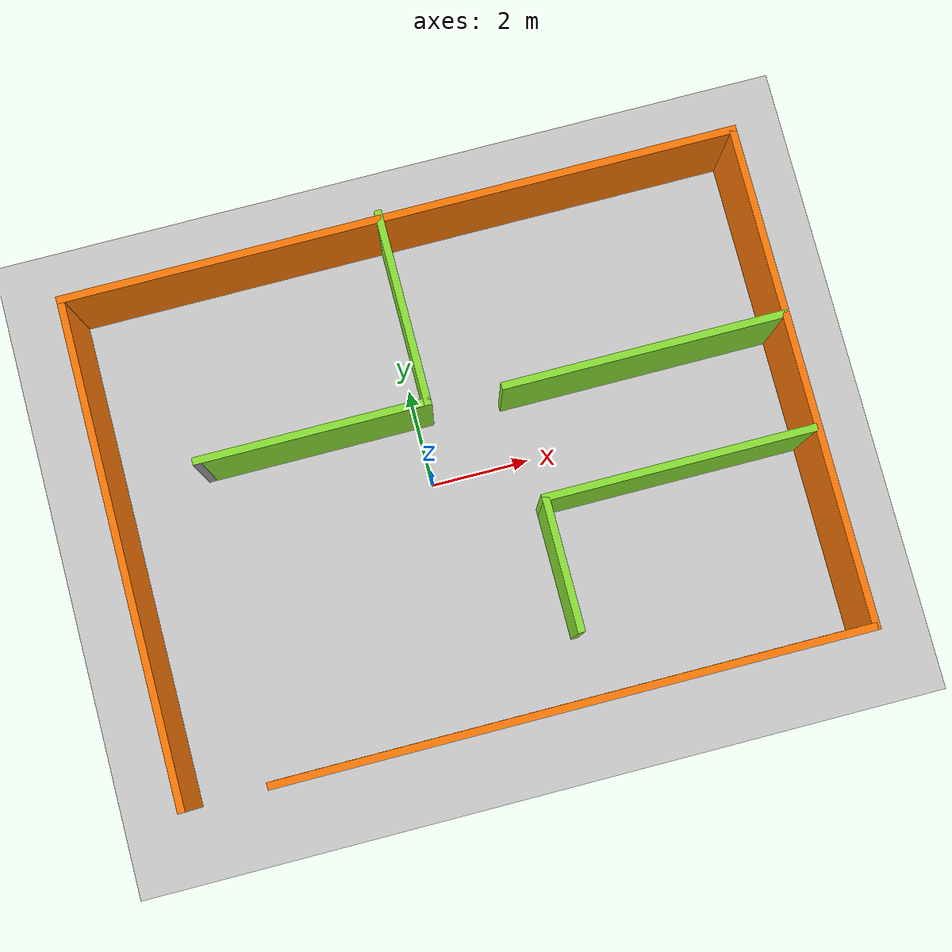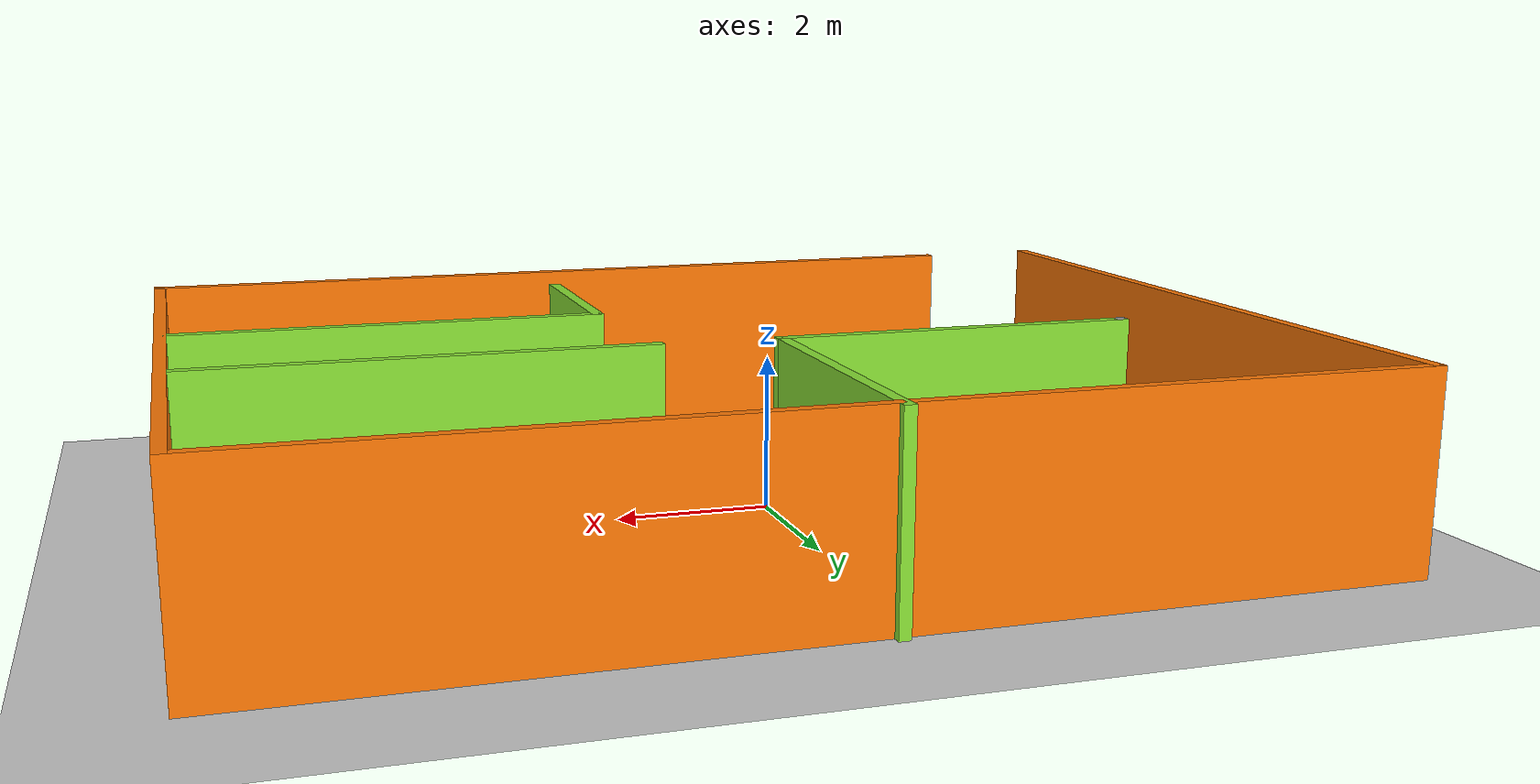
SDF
<sdf version="1.6">
 <world name="default">
  <light name="sun" type="directional">
   <pose>0 0 10 0 -0 0</pose>
   <diffuse>0.8 0.8 0.8 1</diffuse>
   <specular>0.2 0.2 0.2 1</specular>
   <attenuation>
    <range>1000</range>
    <constant>0.9</constant>
    <linear>0.01</linear>
    <quadratic>0.001</quadratic>
   </attenuation>
   <direction>-0.5 0.1 -0.9</direction>
  </light>
  <model name="ground_plane">
   <static>1</static>
   <link name="link">
    <collision name="collision">
     <geometry><plane><normal>0 0 1</normal><size>100 100</size></plane></geometry>
     <surface>
      <contact><collide_bitmask>65535</collide_bitmask></contact>
      <friction><ode><mu>100</mu><mu2>50</mu2></ode></friction>
     </surface>
    </collision>
    <visual name="visual">
     <cast_shadows>0</cast_shadows>
     <geometry><plane><normal>0 0 1</normal><size>100 100</size></plane></geometry>
     <material>
      <script><uri>file://media/materials/scripts/gazebo.material</uri><name>Gazebo/Grey</name></script>
     </material>
    </visual>
   </link>
  </model>
  <gravity>0 0 -9.8</gravity>
  <magnetic_field>6e-06 2.3e-05 -4.2e-05</magnetic_field>
  <atmosphere type="adiabatic"/>
  <physics name="default_physics" default="0" type="ode">
   <max_step_size>0.001</max_step_size>
   <real_time_factor>1</real_time_factor>
   <real_time_update_rate>1000</real_time_update_rate>
  </physics>
  <scene><ambient>0.4 0.4 0.4 1</ambient><background>0.7 0.7 0.7 1</background><shadows>1</shadows></scene>
  <audio><device>default</device></audio>
  <spherical_coordinates>
   <surface_model>EARTH_WGS84</surface_model>
   <latitude_deg>0</latitude_deg>
   <longitude_deg>0</longitude_deg>
   <elevation>0</elevation>
   <heading_deg>0</heading_deg>
  </spherical_coordinates>
  <model name="mod1">
   <pose>0.635126 0.035285 0 0 -0 0</pose>
   <link name="Wall_0">
    <collision name="Wall_0_Collision">
     <geometry><box><size>10.25 0.15 2.5</size></box></geometry>
     <pose>0 0 1.25 0 -0 0</pose>
    </collision>
    <visual name="Wall_0_Visual">
     <pose>0 0 1.25 0 -0 0</pose>
     <geometry><box><size>10.25 0.15 2.5</size></box></geometry>
     <material>
      <script><uri>file://media/materials/scripts/gazebo.material</uri><name>Gazebo/Grey</name></script>
      <ambient>0.996078 0.47451 0.0196078 1</ambient>
     </material>
     <meta><layer>0</layer></meta>
    </visual>
    <pose>-6.8 -0.050462 0 0 -0 1.5708</pose>
   </link>
   <link name="Wall_1">
    <collision name="Wall_1_Collision">
     <geometry><box><size>13.75 0.15 2.5</size></box></geometry>
     <pose>0 0 1.25 0 -0 0</pose>
    </collision>
    <visual name="Wall_1_Visual">
     <pose>0 0 1.25 0 -0 0</pose>
     <geometry><box><size>13.75 0.15 2.5</size></box></geometry>
     <material>
      <script><uri>file://media/materials/scripts/gazebo.material</uri><name>Gazebo/Grey</name></script>
      <ambient>0.996078 0.47451 0.0196078 1</ambient>
     </material>
     <meta><layer>0</layer></meta>
    </visual>
    <pose>0 4.99954 0 0 -0 0</pose>
   </link>
   <link name="Wall_10">
    <collision name="Wall_10_Collision">
     <geometry><box><size>5.75 0.15 2.5</size></box></geometry>
     <pose>0 0 1.25 0 -0 0</pose>
    </collision>
    <visual name="Wall_10_Visual">
     <pose>0 0 1.25 0 -0 0</pose>
     <geometry><box><size>5.75 0.15 2.5</size></box></geometry>
     <material>
      <script><uri>file://media/materials/scripts/gazebo.material</uri><name>Gazebo/Grey</name></script>
      <ambient>0.541176 0.886275 0.203922 1</ambient>
     </material>
     <meta><layer>0</layer></meta>
    </visual>
    <pose>3.95816 1.17627 0 0 -0 0</pose>
   </link>
   <link name="Wall_13">
    <collision name="Wall_13_Collision">
     <geometry><box><size>5.5 0.15 2.5</size></box></geometry>
     <pose>0 0 1.25 0 -0 0</pose>
    </collision>
    <visual name="Wall_13_Visual">
     <pose>0 0 1.25 0 -0 0</pose>
     <geometry><box><size>5.5 0.15 2.5</size></box></geometry>
     <material>
      <script><uri>file://media/materials/scripts/gazebo.material</uri><name>Gazebo/Grey</name></script>
      <ambient>0.541176 0.886275 0.203922 1</ambient>
     </material>
     <meta><layer>0</layer></meta>
    </visual>
    <pose>4.02558 -1.1297 0 0 -0 3.14159</pose>
   </link>
   <link name="Wall_14">
    <collision name="Wall_14_Collision">
     <geometry><box><size>2.75 0.15 2.5</size></box></geometry>
     <pose>0 0 1.25 0 -0 0</pose>
    </collision>
    <visual name="Wall_14_Visual">
     <pose>0 0 1.25 0 -0 0</pose>
     <geometry><box><size>2.75 0.15 2.5</size></box></geometry>
     <material>
      <script><uri>file://media/materials/scripts/gazebo.material</uri><name>Gazebo/Grey</name></script>
      <ambient>0.541176 0.886275 0.203922 1</ambient>
     </material>
     <meta><layer>0</layer></meta>
    </visual>
    <pose>1.35058 -2.4297 0 0 -0 -1.5708</pose>
   </link>
   <link name="Wall_2">
    <collision name="Wall_2_Collision">
     <geometry><box><size>10.25 0.15 2.5</size></box></geometry>
     <pose>0 0 1.25 0 -0 0</pose>
    </collision>
    <visual name="Wall_2_Visual">
     <pose>0 0 1.25 0 -0 0</pose>
     <geometry><box><size>10.25 0.15 2.5</size></box></geometry>
     <material>
      <script><uri>file://media/materials/scripts/gazebo.material</uri><name>Gazebo/Grey</name></script>
      <ambient>0.996078 0.47451 0.0196078 1</ambient>
     </material>
     <meta><layer>0</layer></meta>
    </visual>
    <pose>6.8 -0.050462 0 0 -0 -1.5708</pose>
   </link>
   <link name="Wall_3">
    <collision name="Wall_3_Collision">
     <geometry><box><size>12 0.15 2.5</size></box></geometry>
     <pose>0 0 1.25 0 -0 0</pose>
    </collision>
    <visual name="Wall_3_Visual">
     <pose>0 0 1.25 0 -0 0</pose>
     <geometry><box><size>12 0.15 2.5</size></box></geometry>
     <material>
      <script><uri>file://media/materials/scripts/gazebo.material</uri><name>Gazebo/Grey</name></script>
      <ambient>0.996078 0.47451 0.0196078 1</ambient>
     </material>
     <meta><layer>0</layer></meta>
    </visual>
    <pose>0.875 -5.10046 0 0 -0 3.14159</pose>
   </link>
   <link name="Wall_6">
    <collision name="Wall_6_Collision">
     <geometry><box><size>4 0.15 2.5</size></box></geometry>
     <pose>0 0 1.25 0 -0 0</pose>
    </collision>
    <visual name="Wall_6_Visual">
     <pose>0 0 1.25 0 -0 0</pose>
     <geometry><box><size>4 0.15 2.5</size></box></geometry>
     <material>
      <script><uri>file://media/materials/scripts/gazebo.material</uri><name>Gazebo/Grey</name></script>
      <ambient>0.541176 0.886275 0.203922 1</ambient>
     </material>
     <meta><layer>0</layer></meta>
    </visual>
    <pose>-0.379149 3.17546 0 0 -0 -1.5708</pose>
   </link>
   <link name="Wall_7">
    <collision name="Wall_7_Collision">
     <geometry><box><size>4.75 0.15 2.5</size></box></geometry>
     <pose>0 0 1.25 0 -0 0</pose>
    </collision>
    <visual name="Wall_7_Visual">
     <pose>0 0 1.25 0 -0 0</pose>
     <geometry><box><size>4.75 0.15 2.5</size></box></geometry>
     <material>
      <script><uri>file://media/materials/scripts/gazebo.material</uri><name>Gazebo/Grey</name></script>
      <ambient>0.541176 0.886275 0.203922 1</ambient>
     </material>
     <meta><layer>0</layer></meta>
    </visual>
    <pose>-2.67915 1.25046 0 0 -0 3.14159</pose>
   </link>
   <link name="Wall_8">
    <collision name="Wall_8_Collision">
     <geometry><box><size>0.16 0.15 2.5</size></box></geometry>
     <pose>0 0 1.25 0 -0 0</pose>
    </collision>
    <visual name="Wall_8_Visual">
     <pose>0 0 1.25 0 -0 0</pose>
     <geometry><box><size>0.16 0.15 2.5</size></box></geometry>
     <material>
      <script><uri>file://media/materials/scripts/gazebo.material</uri><name>Gazebo/Grey</name></script>
      <ambient>1 1 1 1</ambient>
     </material>
     <meta><layer>0</layer></meta>
    </visual>
    <pose>-4.97415 1.25046 0 0 -0 0</pose>
   </link>
   <static>1</static>
  </model>
 </world>
</sdf>
